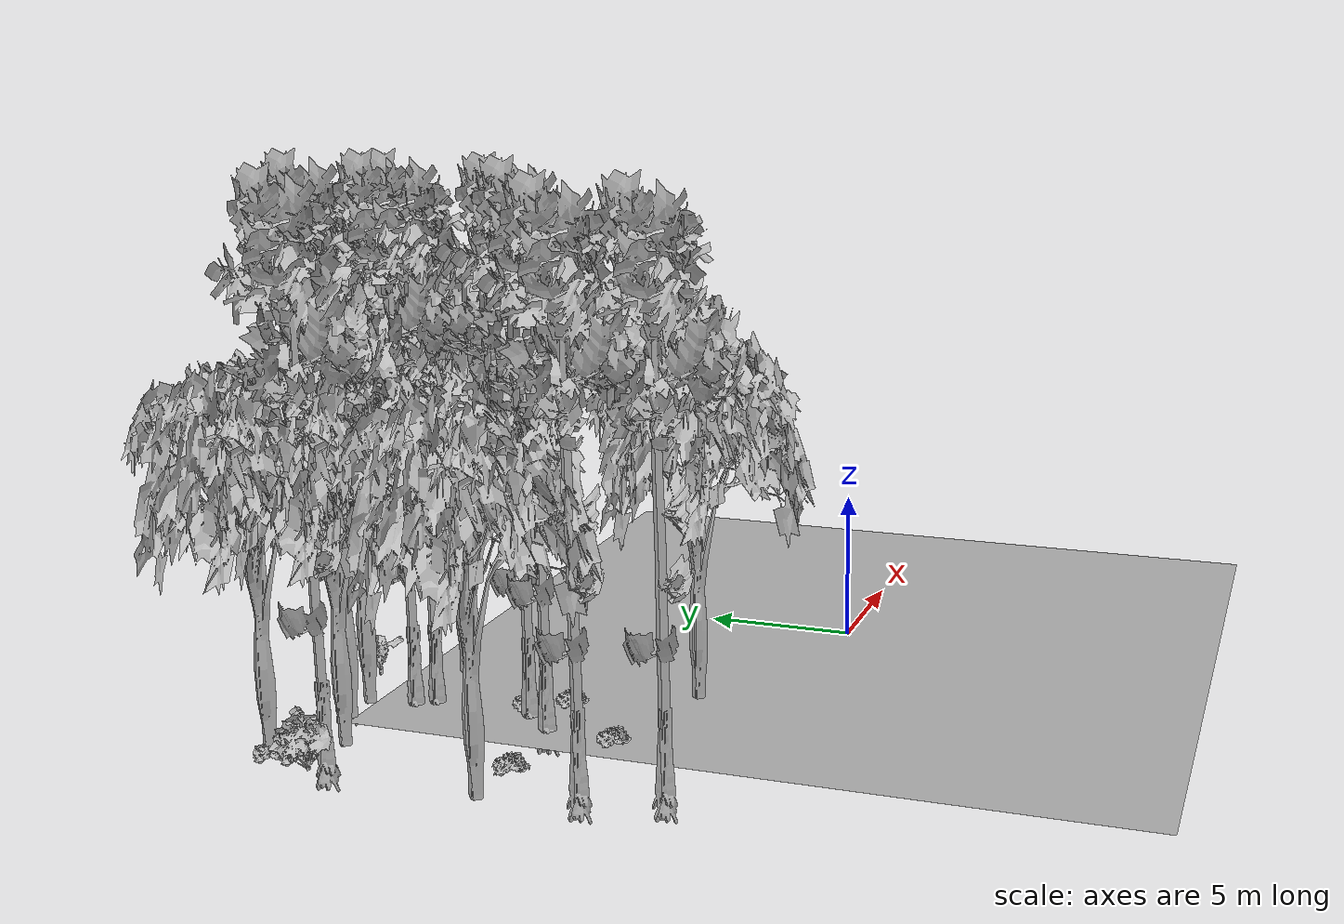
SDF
<sdf version="1.7">
 <world name="default">
  <model name="ground_plane">
   <static>1</static>
   <link name="link">
    <collision name="collision">
     <pose>-50 0 0 0 -0 0</pose>
     <geometry><plane><normal>0 0 1</normal><size>80 80</size></plane></geometry>
     <surface><contact><ode><min_depth>0.01</min_depth><max_vel>0</max_vel></ode></contact></surface>
    </collision>
    <visual name="grass">
     <cast_shadows>0</cast_shadows>
     <geometry>
      <mesh>
       <scale>0.46714285714285714 0.46714285714285714 0.1</scale>
       <uri>file://grass_plane/meshes/grass_plane.dae</uri>
      </mesh>
     </geometry>
    </visual>
   </link>
  </model>
  <model name="Tree 11">
   <static>1</static>
   <pose>-10.511982581206237 11.37835054972711 0 1.57079 -0 0</pose>
   <link name="link">
    <collision name="collision">
     <geometry><mesh><scale>3.5 5 3.5</scale><uri>model://tree_9/meshes/tree_9.obj</uri></mesh></geometry>
    </collision>
    <visual name="visual">
     <geometry><mesh><scale>3.5 5 3.5</scale><uri>model://tree_9/meshes/tree_9.obj</uri></mesh></geometry>
    </visual>
   </link>
  </model>
  <model name="Tree 113">
   <static>1</static>
   <pose>-11.201229384356726 6.491940992576119 0 1.57079 -0 0</pose>
   <link name="link">
    <collision name="collision">
     <geometry><mesh><scale>3.5 5 3.5</scale><uri>model://tree_9/meshes/tree_9.obj</uri></mesh></geometry>
    </collision>
    <visual name="visual">
     <geometry><mesh><scale>3.5 5 3.5</scale><uri>model://tree_9/meshes/tree_9.obj</uri></mesh></geometry>
    </visual>
   </link>
  </model>
  <model name="Tree 128">
   <static>1</static>
   <pose>-10.94643543568171 12.821216416160404 0 1.57079 -0 0</pose>
   <link name="link">
    <collision name="collision">
     <geometry><mesh><scale>3.5 5 3.5</scale><uri>model://tree_2/meshes/tree_2.obj</uri></mesh></geometry>
    </collision>
    <visual name="visual">
     <geometry><mesh><scale>3.5 5 3.5</scale><uri>model://tree_2/meshes/tree_2.obj</uri></mesh></geometry>
    </visual>
   </link>
  </model>
  <model name="Tree 132">
   <static>1</static>
   <pose>-10.166976485944524 10.804228627374627 0 1.57079 -0 0</pose>
   <link name="link">
    <collision name="collision">
     <geometry><mesh><scale>3.5 5 3.5</scale><uri>model://tree_9/meshes/tree_9.obj</uri></mesh></geometry>
    </collision>
    <visual name="visual">
     <geometry><mesh><scale>3.5 5 3.5</scale><uri>model://tree_9/meshes/tree_9.obj</uri></mesh></geometry>
    </visual>
   </link>
  </model>
  <model name="Tree 139">
   <static>1</static>
   <pose>-7.640246404233288 11.095008943454758 0 1.57079 -0 0</pose>
   <link name="link">
    <collision name="collision">
     <geometry><mesh><scale>3.5 5 3.5</scale><uri>model://tree_2/meshes/tree_2.obj</uri></mesh></geometry>
    </collision>
    <visual name="visual">
     <geometry><mesh><scale>3.5 5 3.5</scale><uri>model://tree_2/meshes/tree_2.obj</uri></mesh></geometry>
    </visual>
   </link>
  </model>
  <model name="Tree 180">
   <static>1</static>
   <pose>-15.240439557019624 3.6569267490535253 0 1.57079 -0 0</pose>
   <link name="link">
    <collision name="collision">
     <geometry><mesh><scale>3.5 5 3.5</scale><uri>model://tree_9/meshes/tree_9.obj</uri></mesh></geometry>
    </collision>
    <visual name="visual">
     <geometry><mesh><scale>3.5 5 3.5</scale><uri>model://tree_9/meshes/tree_9.obj</uri></mesh></geometry>
    </visual>
   </link>
  </model>
  <model name="Tree 243">
   <static>1</static>
   <pose>-15.368182241675175 13.636904183641427 0 1.57079 -0 0</pose>
   <link name="link">
    <collision name="collision">
     <geometry><mesh><scale>3.5 5 3.5</scale><uri>model://tree_2/meshes/tree_2.obj</uri></mesh></geometry>
    </collision>
    <visual name="visual">
     <geometry><mesh><scale>3.5 5 3.5</scale><uri>model://tree_2/meshes/tree_2.obj</uri></mesh></geometry>
    </visual>
   </link>
  </model>
  <model name="Tree 393">
   <static>1</static>
   <pose>-14.213625349357468 11.773791920186468 0 1.57079 -0 0</pose>
   <link name="link">
    <collision name="collision">
     <geometry><mesh><scale>3.5 5 3.5</scale><uri>model://tree_2/meshes/tree_2.obj</uri></mesh></geometry>
    </collision>
    <visual name="visual">
     <geometry><mesh><scale>3.5 5 3.5</scale><uri>model://tree_2/meshes/tree_2.obj</uri></mesh></geometry>
    </visual>
   </link>
  </model>
  <model name="Tree 478">
   <static>1</static>
   <pose>-10.322301411468636 7.480151418157746 0 1.57079 -0 0</pose>
   <link name="link">
    <collision name="collision">
     <geometry><mesh><scale>3.5 5 3.5</scale><uri>model://tree_9/meshes/tree_9.obj</uri></mesh></geometry>
    </collision>
    <visual name="visual">
     <geometry><mesh><scale>3.5 5 3.5</scale><uri>model://tree_9/meshes/tree_9.obj</uri></mesh></geometry>
    </visual>
   </link>
  </model>
  <model name="Tree 483">
   <static>1</static>
   <pose>-12.21190068510155 12.752417596499939 0 1.57079 -0 0</pose>
   <link name="link">
    <collision name="collision">
     <geometry><mesh><scale>3.5 5 3.5</scale><uri>model://tree_2/meshes/tree_2.obj</uri></mesh></geometry>
    </collision>
    <visual name="visual">
     <geometry><mesh><scale>3.5 5 3.5</scale><uri>model://tree_2/meshes/tree_2.obj</uri></mesh></geometry>
    </visual>
   </link>
  </model>
  <model name="Tree 507">
   <static>1</static>
   <pose>-10.96860291082324 13.669471072524992 0 1.57079 -0 0</pose>
   <link name="link">
    <collision name="collision">
     <geometry><mesh><scale>3.5 5 3.5</scale><uri>model://tree_9/meshes/tree_9.obj</uri></mesh></geometry>
    </collision>
    <visual name="visual">
     <geometry><mesh><scale>3.5 5 3.5</scale><uri>model://tree_9/meshes/tree_9.obj</uri></mesh></geometry>
    </visual>
   </link>
  </model>
  <model name="Tree 543">
   <static>1</static>
   <pose>-16.37366025140775 6.327226680859738 0 1.57079 -0 0</pose>
   <link name="link">
    <collision name="collision">
     <geometry><mesh><scale>3.5 5 3.5</scale><uri>model://tree_2/meshes/tree_2.obj</uri></mesh></geometry>
    </collision>
    <visual name="visual">
     <geometry><mesh><scale>3.5 5 3.5</scale><uri>model://tree_2/meshes/tree_2.obj</uri></mesh></geometry>
    </visual>
   </link>
  </model>
  <model name="Tree 589">
   <static>1</static>
   <pose>-14.489350233797627 1.3406139722978452 0 1.57079 -0 0</pose>
   <link name="link">
    <collision name="collision">
     <geometry><mesh><scale>3.5 5 3.5</scale><uri>model://tree_9/meshes/tree_9.obj</uri></mesh></geometry>
    </collision>
    <visual name="visual">
     <geometry><mesh><scale>3.5 5 3.5</scale><uri>model://tree_9/meshes/tree_9.obj</uri></mesh></geometry>
    </visual>
   </link>
  </model>
  <model name="Tree 596">
   <static>1</static>
   <pose>-15.572610287907466 11.561698316671418 0 1.57079 -0 0</pose>
   <link name="link">
    <collision name="collision">
     <geometry><mesh><scale>3.5 5 3.5</scale><uri>model://tree_9/meshes/tree_9.obj</uri></mesh></geometry>
    </collision>
    <visual name="visual">
     <geometry><mesh><scale>3.5 5 3.5</scale><uri>model://tree_9/meshes/tree_9.obj</uri></mesh></geometry>
    </visual>
   </link>
  </model>
  <model name="Tree 639">
   <static>1</static>
   <pose>-7.338409034359316 2.957914647578825 0 1.57079 -0 0</pose>
   <link name="link">
    <collision name="collision">
     <geometry><mesh><scale>3.5 5 3.5</scale><uri>model://tree_2/meshes/tree_2.obj</uri></mesh></geometry>
    </collision>
    <visual name="visual">
     <geometry><mesh><scale>3.5 5 3.5</scale><uri>model://tree_2/meshes/tree_2.obj</uri></mesh></geometry>
    </visual>
   </link>
  </model>
  <model name="Bush 17">
   <static>1</static>
   <pose>-15.50655681425274 12.575518979356382 0 1.57079 -0 0</pose>
   <link name="link">
    <collision name="collision">
     <geometry><mesh><scale>2 2 2</scale><uri>model://bush_2/meshes/bush_2.obj</uri></mesh></geometry>
     <surface><contact><collide_without_contact>false</collide_without_contact></contact></surface>
    </collision>
    <visual name="visual">
     <geometry><mesh><scale>2 2 2</scale><uri>model://bush_2/meshes/bush_2.obj</uri></mesh></geometry>
    </visual>
   </link>
  </model>
  <model name="Bush 128">
   <static>1</static>
   <pose>-15.585792470922314 13.450467399035048 0 1.57079 -0 0</pose>
   <link name="link">
    <collision name="collision">
     <geometry><mesh><scale>2 2 2</scale><uri>model://bush_2/meshes/bush_2.obj</uri></mesh></geometry>
     <surface><contact><collide_without_contact>false</collide_without_contact></contact></surface>
    </collision>
    <visual name="visual">
     <geometry><mesh><scale>2 2 2</scale><uri>model://bush_2/meshes/bush_2.obj</uri></mesh></geometry>
    </visual>
   </link>
  </model>
  <model name="Bush 272">
   <static>1</static>
   <pose>-16.11745332504603 11.837293324350952 0 1.57079 -0 0</pose>
   <link name="link">
    <collision name="collision">
     <geometry><mesh><scale>2 2 2</scale><uri>model://bush_1/meshes/bush_1.obj</uri></mesh></geometry>
     <surface><contact><collide_without_contact>false</collide_without_contact></contact></surface>
    </collision>
    <visual name="visual">
     <geometry><mesh><scale>2 2 2</scale><uri>model://bush_1/meshes/bush_1.obj</uri></mesh></geometry>
    </visual>
   </link>
  </model>
  <model name="Bush 365">
   <static>1</static>
   <pose>-8.975519897395369 6.6387875448737645 0 1.57079 -0 0</pose>
   <link name="link">
    <collision name="collision">
     <geometry><mesh><scale>2 2 2</scale><uri>model://bush_2/meshes/bush_2.obj</uri></mesh></geometry>
     <surface><contact><collide_without_contact>false</collide_without_contact></contact></surface>
    </collision>
    <visual name="visual">
     <geometry><mesh><scale>2 2 2</scale><uri>model://bush_2/meshes/bush_2.obj</uri></mesh></geometry>
    </visual>
   </link>
  </model>
  <model name="Bush 445">
   <static>1</static>
   <pose>-8.637288438094977 13.724554993685693 0 1.57079 -0 0</pose>
   <link name="link">
    <collision name="collision">
     <geometry><mesh><scale>2 2 2</scale><uri>model://bush_0/meshes/bush_0.obj</uri></mesh></geometry>
     <surface><contact><collide_without_contact>false</collide_without_contact></contact></surface>
    </collision>
    <visual name="visual">
     <geometry><mesh><scale>2 2 2</scale><uri>model://bush_0/meshes/bush_0.obj</uri></mesh></geometry>
    </visual>
   </link>
  </model>
  <model name="Bush 503">
   <static>1</static>
   <pose>-9.677837022119544 7.821819944330898 0 1.57079 -0 0</pose>
   <link name="link">
    <collision name="collision">
     <geometry><mesh><scale>2 2 2</scale><uri>model://bush_2/meshes/bush_2.obj</uri></mesh></geometry>
     <surface><contact><collide_without_contact>false</collide_without_contact></contact></surface>
    </collision>
    <visual name="visual">
     <geometry><mesh><scale>2 2 2</scale><uri>model://bush_2/meshes/bush_2.obj</uri></mesh></geometry>
    </visual>
   </link>
  </model>
  <model name="Bush 505">
   <static>1</static>
   <pose>-11.467705733689137 4.182242184720792 0 1.57079 -0 0</pose>
   <link name="link">
    <collision name="collision">
     <geometry><mesh><scale>2 2 2</scale><uri>model://bush_2/meshes/bush_2.obj</uri></mesh></geometry>
     <surface><contact><collide_without_contact>false</collide_without_contact></contact></surface>
    </collision>
    <visual name="visual">
     <geometry><mesh><scale>2 2 2</scale><uri>model://bush_2/meshes/bush_2.obj</uri></mesh></geometry>
    </visual>
   </link>
  </model>
  <model name="Bush 527">
   <static>1</static>
   <pose>-14.187007724855043 6.295882868103924 0 1.57079 -0 0</pose>
   <link name="link">
    <collision name="collision">
     <geometry><mesh><scale>2 2 2</scale><uri>model://bush_2/meshes/bush_2.obj</uri></mesh></geometry>
     <surface><contact><collide_without_contact>false</collide_without_contact></contact></surface>
    </collision>
    <visual name="visual">
     <geometry><mesh><scale>2 2 2</scale><uri>model://bush_2/meshes/bush_2.obj</uri></mesh></geometry>
    </visual>
   </link>
  </model>
 </world>
</sdf>
